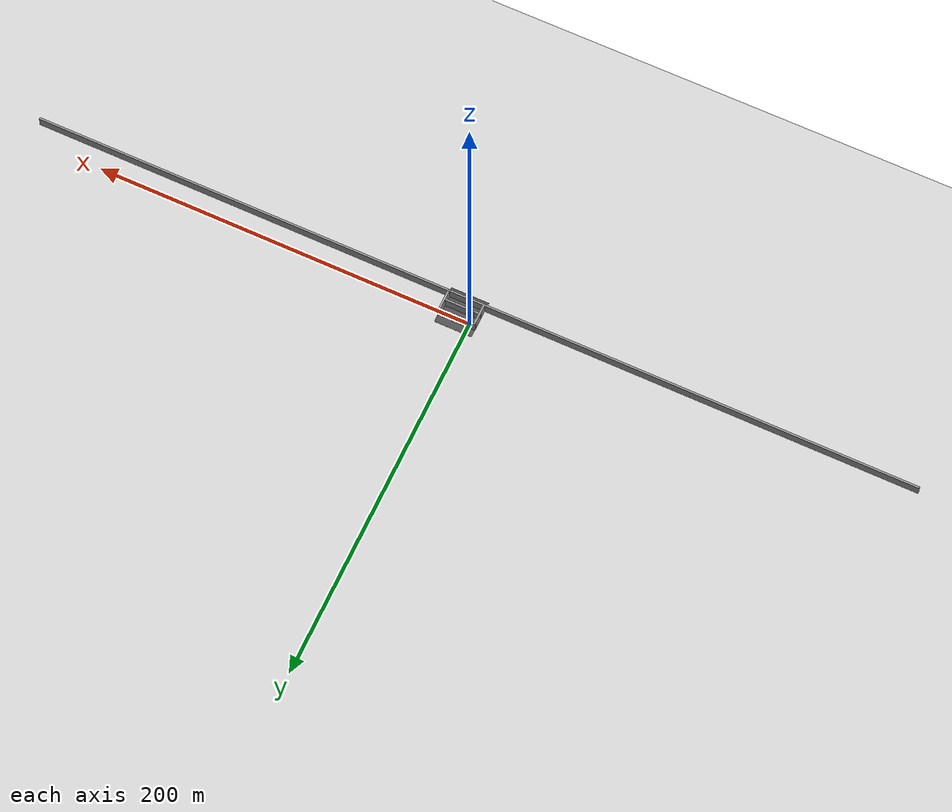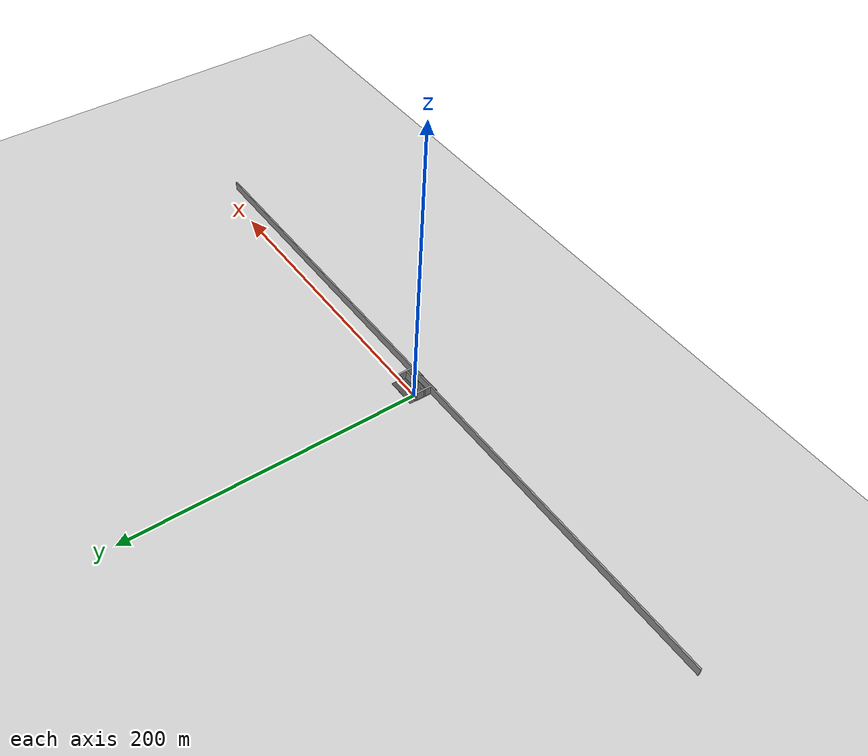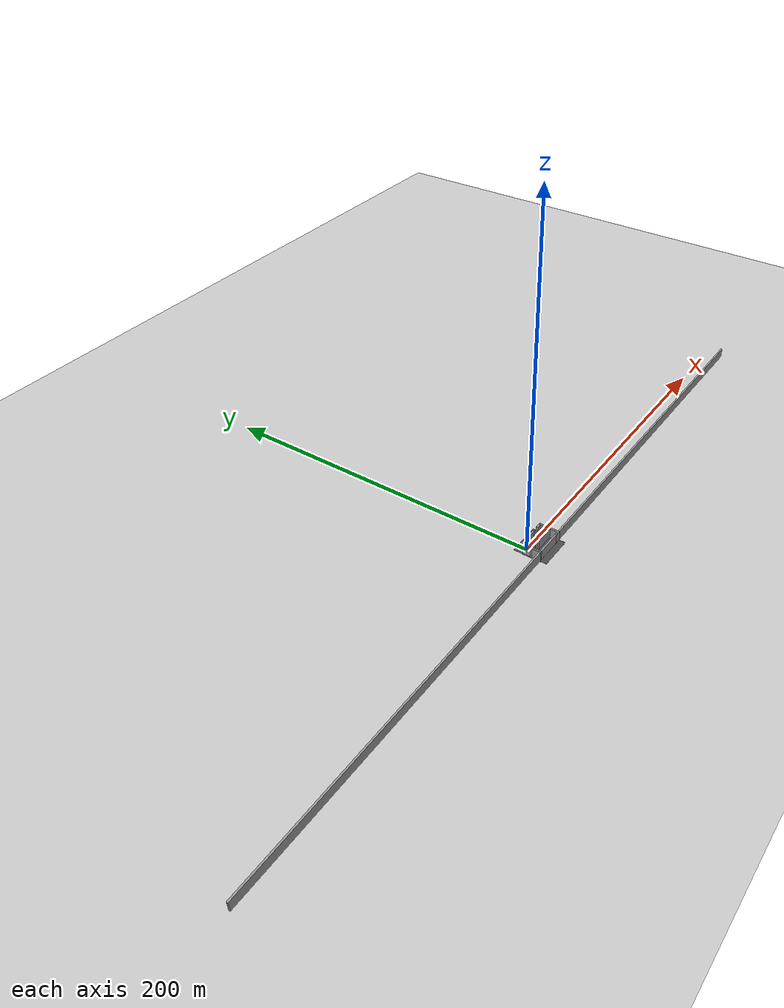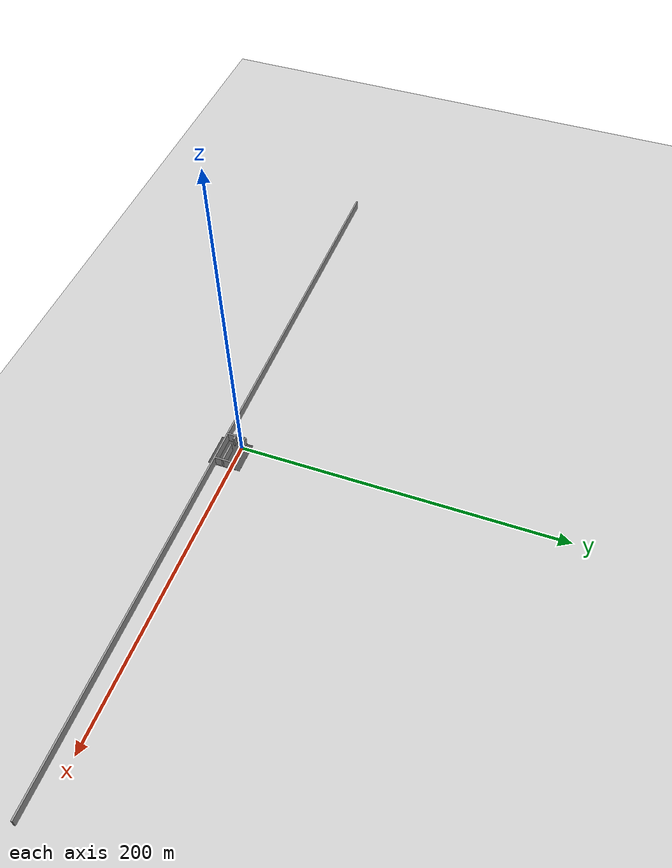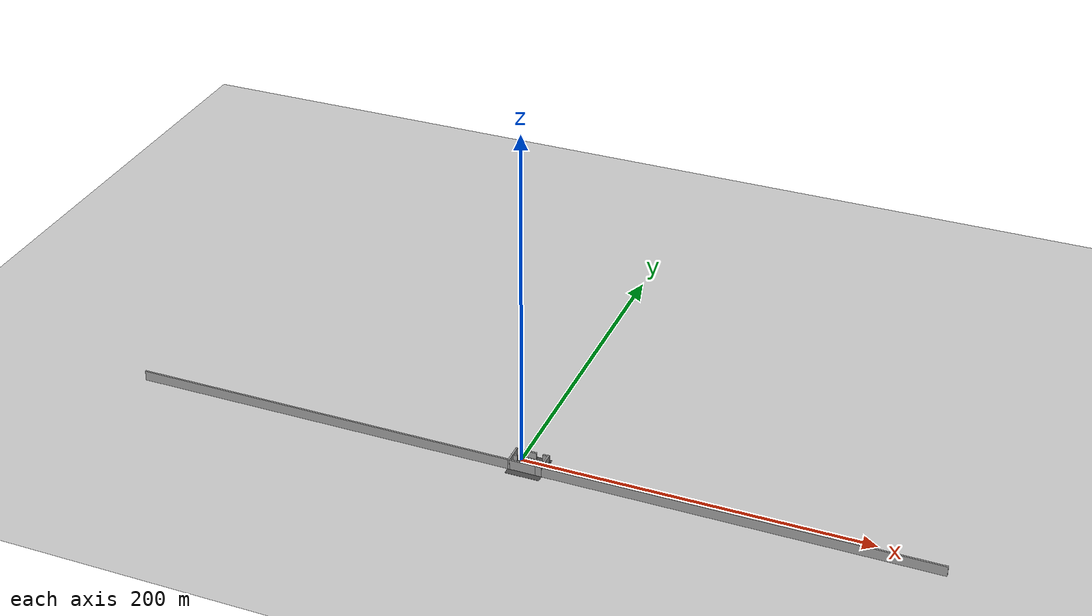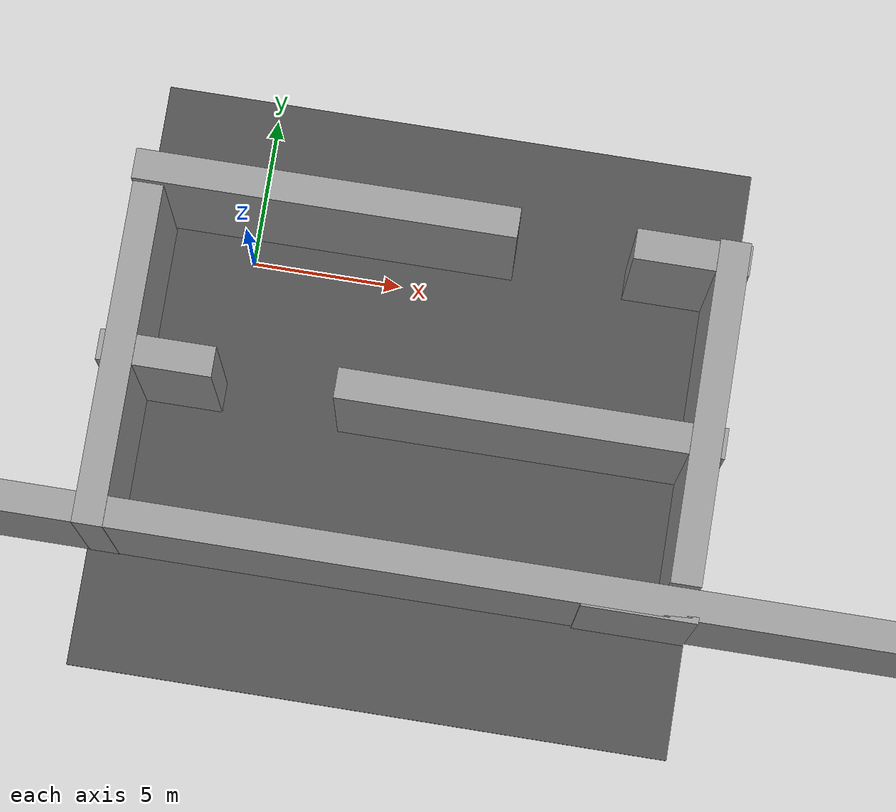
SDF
<sdf version="1.6">
 <world name="default">
  <light name="sun" type="directional">
   <pose>0 0 10 0 -0 0</pose>
   <diffuse>0.8 0.8 0.8 1</diffuse>
   <specular>0.2 0.2 0.2 1</specular>
   <attenuation>
    <range>1000</range>
    <constant>0.9</constant>
    <linear>0.01</linear>
    <quadratic>0.001</quadratic>
   </attenuation>
   <direction>-0.5 0.1 -0.9</direction>
  </light>
  <model name="ground_plane">
   <static>1</static>
   <link name="link">
    <collision name="collision">
     <geometry><plane><normal>0 0 1</normal><size>100 100</size></plane></geometry>
     <surface>
      <contact><collide_bitmask>65535</collide_bitmask></contact>
      <friction><ode><mu>100</mu><mu2>50</mu2></ode></friction>
     </surface>
    </collision>
    <visual name="visual">
     <cast_shadows>0</cast_shadows>
     <geometry><plane><normal>0 0 1</normal><size>100 100</size></plane></geometry>
     <material>
      <script><uri>file://media/materials/scripts/gazebo.material</uri><name>Gazebo/Grey</name></script>
     </material>
    </visual>
   </link>
  </model>
  <model name="asphalt_plane">
   <pose>6.14995 -4.33792 0 0 -0 0</pose>
   <static>1</static>
   <link name="link">
    <collision name="collision"><geometry><box><size>20 20 0.1</size></box></geometry></collision>
    <visual name="visual">
     <cast_shadows>0</cast_shadows>
     <geometry><box><size>20 20 0.1</size></box></geometry>
     <material>
      <script>
       <uri>model://asphalt_plane/materials/scripts</uri>
       <uri>model://asphalt_plane/materials/textures</uri>
       <name>vrc/asphalt</name>
      </script>
     </material>
    </visual>
   </link>
  </model>
  <physics name="default_physics" default="0" type="ode">
   <ode>
    <solver>
     <type>quick</type>
     <iters>10</iters>
     <sor>1.3</sor>
     <use_dynamic_moi_rescaling>0</use_dynamic_moi_rescaling>
    </solver>
    <constraints>
     <cfm>0</cfm>
     <erp>0.2</erp>
     <contact_max_correcting_vel>100</contact_max_correcting_vel>
     <contact_surface_layer>0.001</contact_surface_layer>
    </constraints>
   </ode>
   <max_step_size>0.002</max_step_size>
   <real_time_factor>1</real_time_factor>
   <real_time_update_rate>500</real_time_update_rate>
  </physics>
  <gravity>0 0 -9.8066</gravity>
  <magnetic_field>6e-06 2.3e-05 -4.2e-05</magnetic_field>
  <atmosphere type="adiabatic"/>
  <scene><ambient>0.4 0.4 0.4 1</ambient><background>0.7 0.7 0.7 1</background><shadows>1</shadows></scene>
  <spherical_coordinates>
   <surface_model>EARTH_WGS84</surface_model>
   <latitude_deg>0</latitude_deg>
   <longitude_deg>0</longitude_deg>
   <elevation>0</elevation>
   <heading_deg>0</heading_deg>
  </spherical_coordinates>
  <model name="unit_box_0_clone">
   <pose>3.25687 -9.93812 3.12325 0 -0 0</pose>
   <link name="link">
    <inertial>
     <mass>1</mass>
     <inertia>
      <ixx>0.166667</ixx>
      <ixy>0</ixy>
      <ixz>0</ixz>
      <iyy>0.166667</iyy>
      <iyz>0</iyz>
      <izz>0.166667</izz>
     </inertia>
    </inertial>
    <collision name="collision"><geometry><box><size>470.524 1 6.10246</size></box></geometry></collision>
    <visual name="visual">
     <geometry><box><size>470.524 1 6.10246</size></box></geometry>
     <material>
      <script><name>Gazebo/Grey</name><uri>file://media/materials/scripts/gazebo.material</uri></script>
     </material>
    </visual>
   </link>
  </model>
  <model name="unit_box_0_clone_clone">
   <pose>-2.06738 -4.68548 3.12325 0 -0 0</pose>
   <link name="link">
    <inertial>
     <mass>1</mass>
     <inertia>
      <ixx>0.166667</ixx>
      <ixy>0</ixy>
      <ixz>0</ixz>
      <iyy>0.166667</iyy>
      <iyz>0</iyz>
      <izz>0.166667</izz>
     </inertia>
    </inertial>
    <collision name="collision"><geometry><box><size>3.72674 1 6.10246</size></box></geometry></collision>
    <visual name="visual">
     <geometry><box><size>3.72674 1 6.10246</size></box></geometry>
     <material>
      <script><name>Gazebo/Grey</name><uri>file://media/materials/scripts/gazebo.material</uri></script>
     </material>
    </visual>
   </link>
  </model>
  <model name="unit_box_0_clone_0">
   <pose>9.95936 -4.71787 3.12325 0 -0 0</pose>
   <link name="link">
    <inertial>
     <mass>1</mass>
     <inertia>
      <ixx>0.166667</ixx>
      <ixy>0</ixy>
      <ixz>0</ixz>
      <iyy>0.166667</iyy>
      <iyz>0</iyz>
      <izz>0.166667</izz>
     </inertia>
    </inertial>
    <collision name="collision"><geometry><box><size>12.4923 1 6.10246</size></box></geometry></collision>
    <visual name="visual">
     <geometry><box><size>12.4923 1 6.10246</size></box></geometry>
     <material>
      <script><name>Gazebo/Grey</name><uri>file://media/materials/scripts/gazebo.material</uri></script>
     </material>
    </visual>
   </link>
  </model>
  <model name="unit_box_0_clone_1">
   <pose>2.41256 1.32044 3.12325 0 -0 0</pose>
   <link name="link">
    <inertial>
     <mass>1</mass>
     <inertia>
      <ixx>0.166667</ixx>
      <ixy>0</ixy>
      <ixz>0</ixz>
      <iyy>0.166667</iyy>
      <iyz>0</iyz>
      <izz>0.166667</izz>
     </inertia>
    </inertial>
    <collision name="collision"><geometry><box><size>12.4923 1 6.10246</size></box></geometry></collision>
    <visual name="visual">
     <geometry><box><size>12.4923 1 6.10246</size></box></geometry>
     <material>
      <script><name>Gazebo/Grey</name><uri>file://media/materials/scripts/gazebo.material</uri></script>
     </material>
    </visual>
   </link>
  </model>
  <model name="unit_box_0_clone_clone_clone">
   <pose>14.2763 1.25407 3.12325 0 -0 0</pose>
   <link name="link">
    <inertial>
     <mass>1</mass>
     <inertia>
      <ixx>0.166667</ixx>
      <ixy>0</ixy>
      <ixz>0</ixz>
      <iyy>0.166667</iyy>
      <iyz>0</iyz>
      <izz>0.166667</izz>
     </inertia>
    </inertial>
    <collision name="collision"><geometry><box><size>3.72674 1 6.10246</size></box></geometry></collision>
    <visual name="visual">
     <geometry><box><size>3.72674 1 6.10246</size></box></geometry>
     <material>
      <script><name>Gazebo/Grey</name><uri>file://media/materials/scripts/gazebo.material</uri></script>
     </material>
    </visual>
   </link>
  </model>
  <model name="unit_box_1_clone">
   <pose>-3.26295 -4.85566 2.67813 0 -0 0</pose>
   <link name="link">
    <inertial>
     <mass>1</mass>
     <inertia>
      <ixx>0.166667</ixx>
      <ixy>0</ixy>
      <ixz>0</ixz>
      <iyy>0.166667</iyy>
      <iyz>0</iyz>
      <izz>0.166667</izz>
     </inertia>
    </inertial>
    <collision name="collision"><geometry><box><size>1 11.1792 7.0296</size></box></geometry></collision>
    <visual name="visual">
     <geometry><box><size>1 11.1792 7.0296</size></box></geometry>
     <material>
      <script><name>Gazebo/Grey</name><uri>file://media/materials/scripts/gazebo.material</uri></script>
     </material>
    </visual>
   </link>
  </model>
  <model name="unit_box_0_clone_clone_clone_0">
   <pose>14.2671 -10.0093 3.12325 0 -0 0</pose>
   <link name="link">
    <inertial>
     <mass>1</mass>
     <inertia>
      <ixx>0.166667</ixx>
      <ixy>0</ixy>
      <ixz>0</ixz>
      <iyy>0.166667</iyy>
      <iyz>0</iyz>
      <izz>0.166667</izz>
     </inertia>
    </inertial>
    <collision name="collision"><geometry><box><size>3.72674 1 6.10246</size></box></geometry></collision>
    <visual name="visual">
     <geometry><box><size>3.72674 1 6.10246</size></box></geometry>
     <material>
      <script><name>Gazebo/Grey</name><uri>file://media/materials/scripts/gazebo.material</uri></script>
     </material>
    </visual>
   </link>
  </model>
  <model name="unit_box_1_clone_clone">
   <pose>15.5764 -3.76161 2.67813 0 -0 0</pose>
   <link name="link">
    <inertial>
     <mass>1</mass>
     <inertia>
      <ixx>0.166667</ixx>
      <ixy>0</ixy>
      <ixz>0</ixz>
      <iyy>0.166667</iyy>
      <iyz>0</iyz>
      <izz>0.166667</izz>
     </inertia>
    </inertial>
    <collision name="collision"><geometry><box><size>1 11.1792 7.0296</size></box></geometry></collision>
    <visual name="visual">
     <geometry><box><size>1 11.1792 7.0296</size></box></geometry>
     <material>
      <script><name>Gazebo/Grey</name><uri>file://media/materials/scripts/gazebo.material</uri></script>
     </material>
    </visual>
   </link>
  </model>
 </world>
</sdf>
